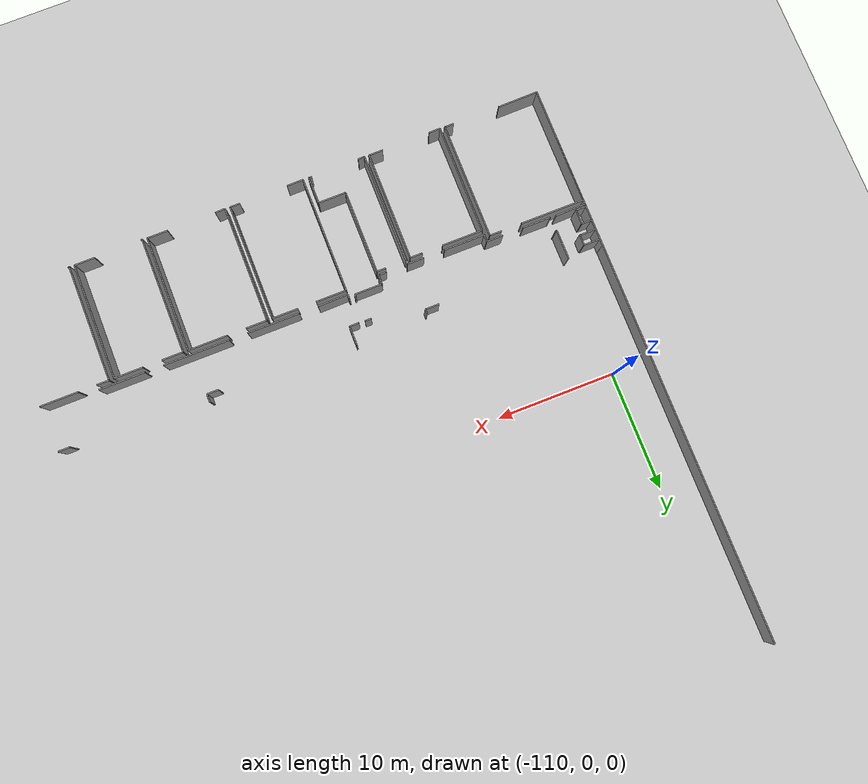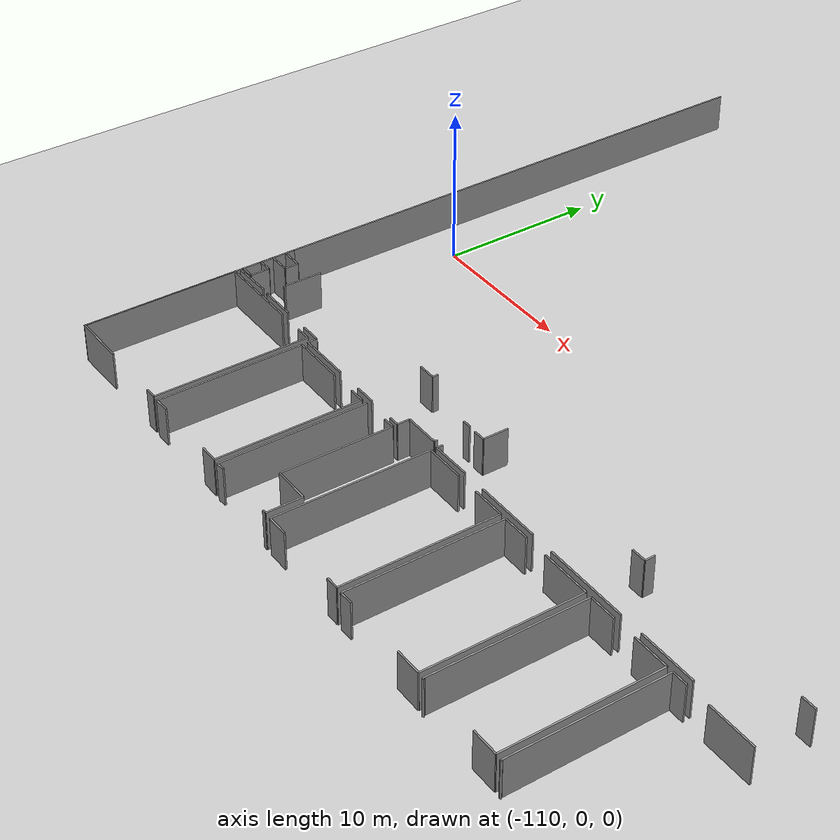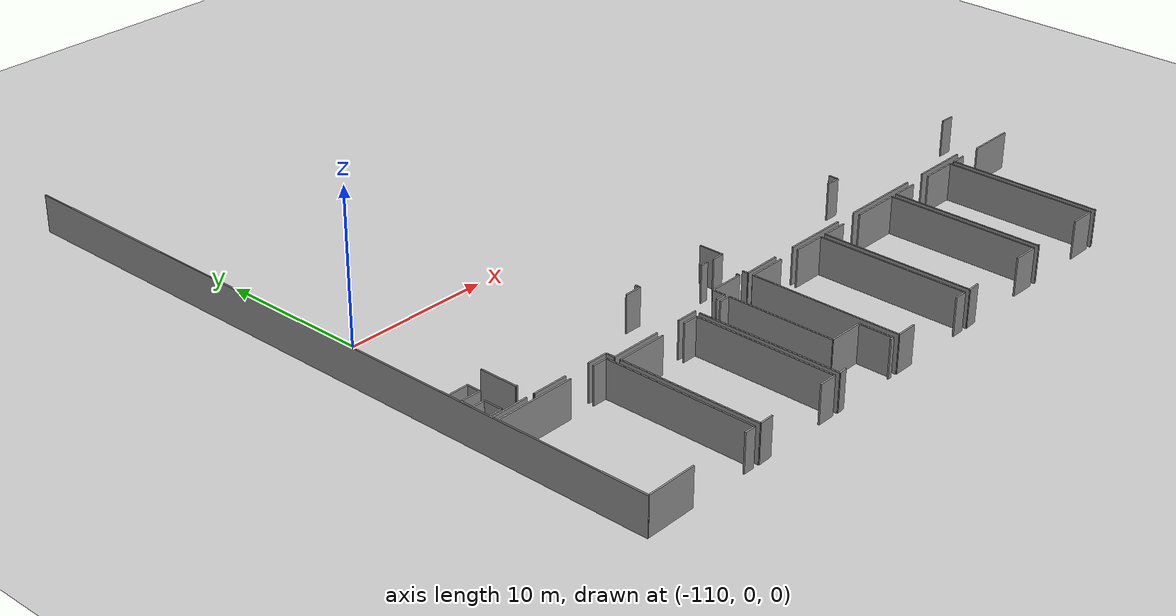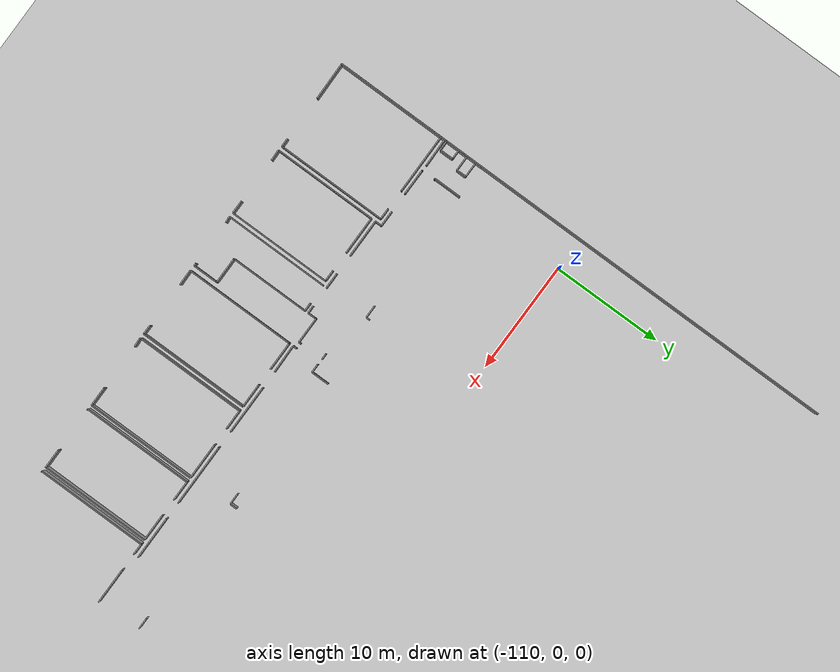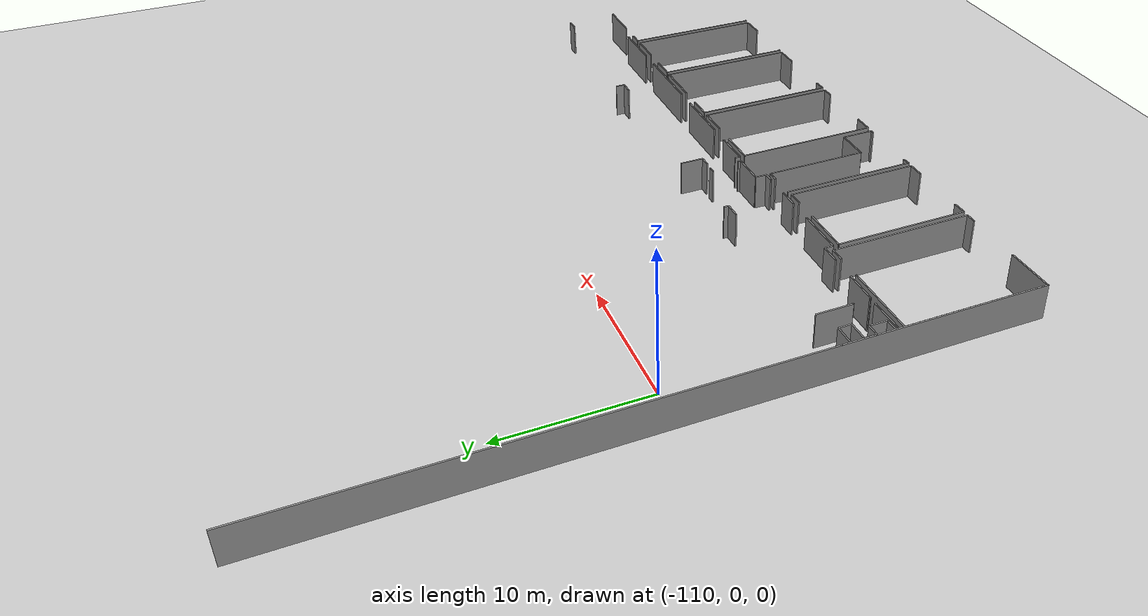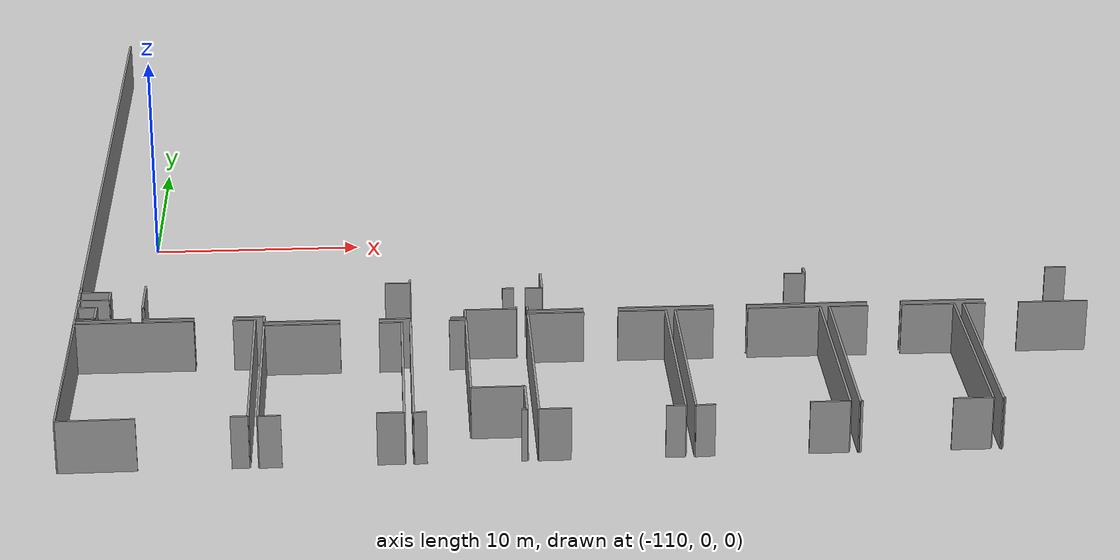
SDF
<sdf version="1.6">
 <world name="default">
  <model name="ground_plane">
   <static>1</static>
   <link name="link">
    <collision name="collision">
     <geometry><plane><normal>0 0 1</normal><size>100 100</size></plane></geometry>
     <surface><friction><ode><mu>100</mu><mu2>50</mu2></ode></friction></surface>
    </collision>
    <visual name="visual">
     <cast_shadows>0</cast_shadows>
     <geometry><plane><normal>0 0 1</normal><size>100 100</size></plane></geometry>
     <material>
      <script><uri>file://media/materials/scripts/gazebo.material</uri><name>Gazebo/Grey</name></script>
     </material>
    </visual>
   </link>
  </model>
  <model name="0510035341_A_40_1_103">
   <static>1</static>
   <link name="Wall_251">
    <collision name="Wall_251_Collision">
     <geometry><box><size>0.391594184496 0.1 2.5</size></box></geometry>
     <pose>0.195797092248 0 1.25 0 0 0</pose>
    </collision>
    <visual name="Wall_251_Visual">
     <pose>0.195797092248 0 1.25 0 0 0</pose>
     <geometry><box><size>0.391594184496 0.1 2.5</size></box></geometry>
     <material>
      <script><uri>file://media/materials/scripts/gazebo.material</uri><name>Gazebo/Grey</name></script>
      <ambient>1 1 1 1</ambient>
     </material>
    </visual>
    <pose>20.8461684972 -37.7350009523 0 0 0 1.57079632679</pose>
   </link>
   <link name="Wall_252">
    <collision name="Wall_252_Collision">
     <geometry><box><size>0.802996635134 0.1 2.5</size></box></geometry>
     <pose>0.401498317567 0 1.25 0 0 0</pose>
    </collision>
    <visual name="Wall_252_Visual">
     <pose>0.401498317567 0 1.25 0 0 0</pose>
     <geometry><box><size>0.802996635134 0.1 2.5</size></box></geometry>
     <material>
      <script><uri>file://media/materials/scripts/gazebo.material</uri><name>Gazebo/Grey</name></script>
      <ambient>1 1 1 1</ambient>
     </material>
    </visual>
    <pose>20.8461684972 -35.2236683385 0 0 0 0.0</pose>
   </link>
   <link name="Wall_253">
    <collision name="Wall_253_Collision">
     <geometry><box><size>1.62630944067 0.1 2.5</size></box></geometry>
     <pose>0.813154720335 0 1.25 0 0 0</pose>
    </collision>
    <visual name="Wall_253_Visual">
     <pose>0.813154720335 0 1.25 0 0 0</pose>
     <geometry><box><size>1.62630944067 0.1 2.5</size></box></geometry>
     <material>
      <script><uri>file://media/materials/scripts/gazebo.material</uri><name>Gazebo/Grey</name></script>
      <ambient>1 1 1 1</ambient>
     </material>
    </visual>
    <pose>21.6491651324 -35.2236683385 0 0 0 1.57079632679</pose>
   </link>
   <link name="Wall_257">
    <collision name="Wall_257_Collision">
     <geometry><box><size>0.988127737921 0.1 2.5</size></box></geometry>
     <pose>0.494063868961 0 1.25 0 0 0</pose>
    </collision>
    <visual name="Wall_257_Visual">
     <pose>0.494063868961 0 1.25 0 0 0</pose>
     <geometry><box><size>0.988127737921 0.1 2.5</size></box></geometry>
     <material>
      <script><uri>file://media/materials/scripts/gazebo.material</uri><name>Gazebo/Grey</name></script>
      <ambient>1 1 1 1</ambient>
     </material>
    </visual>
    <pose>33.238270586 -34.2281759888 0 0 0 0.0</pose>
   </link>
   <link name="Wall_258">
    <collision name="Wall_258_Collision">
     <geometry><box><size>0.658751825281 0.1 2.5</size></box></geometry>
     <pose>0.32937591264 0 1.25 0 0 0</pose>
    </collision>
    <visual name="Wall_258_Visual">
     <pose>0.32937591264 0 1.25 0 0 0</pose>
     <geometry><box><size>0.658751825281 0.1 2.5</size></box></geometry>
     <material>
      <script><uri>file://media/materials/scripts/gazebo.material</uri><name>Gazebo/Grey</name></script>
      <ambient>1 1 1 1</ambient>
     </material>
    </visual>
    <pose>34.2263983239 -34.2281759888 0 0 0 1.57079632679</pose>
   </link>
   <link name="Wall_261">
    <collision name="Wall_261_Collision">
     <geometry><box><size>1.00184115294 0.1 2.5</size></box></geometry>
     <pose>0.500920576471 0 1.25 0 0 0</pose>
    </collision>
    <visual name="Wall_261_Visual">
     <pose>0.500920576471 0 1.25 0 0 0</pose>
     <geometry><box><size>1.00184115294 0.1 2.5</size></box></geometry>
     <material>
      <script><uri>file://media/materials/scripts/gazebo.material</uri><name>Gazebo/Grey</name></script>
      <ambient>1 1 1 1</ambient>
     </material>
    </visual>
    <pose>45.7751253889 -34.197193829 0 0 0 0.0</pose>
   </link>
   <link name="Wall_281">
    <collision name="Wall_281_Collision">
     <geometry><box><size>3.90857723319 0.1 2.5</size></box></geometry>
     <pose>1.9542886166 0 1.25 0 0 0</pose>
    </collision>
    <visual name="Wall_281_Visual">
     <pose>1.9542886166 0 1.25 0 0 0</pose>
     <geometry><box><size>3.90857723319 0.1 2.5</size></box></geometry>
     <material>
      <script><uri>file://media/materials/scripts/gazebo.material</uri><name>Gazebo/Grey</name></script>
      <ambient>1 1 1 1</ambient>
     </material>
    </visual>
    <pose>42.1641800521 -37.6971620849 0 0 0 3.14159265359</pose>
   </link>
   <link name="Wall_282">
    <collision name="Wall_282_Collision">
     <geometry><box><size>5.64357818551 0.1 2.5</size></box></geometry>
     <pose>2.82178909276 0 1.25 0 0 0</pose>
    </collision>
    <visual name="Wall_282_Visual">
     <pose>2.82178909276 0 1.25 0 0 0</pose>
     <geometry><box><size>5.64357818551 0.1 2.5</size></box></geometry>
     <material>
      <script><uri>file://media/materials/scripts/gazebo.material</uri><name>Gazebo/Grey</name></script>
      <ambient>1 1 1 1</ambient>
     </material>
    </visual>
    <pose>36.6915116501 -37.6971620849 0 0 0 3.14159265359</pose>
   </link>
   <link name="Wall_283">
    <collision name="Wall_283_Collision">
     <geometry><box><size>4.43171862104 0.1 2.5</size></box></geometry>
     <pose>2.21585931052 0 1.25 0 0 0</pose>
    </collision>
    <visual name="Wall_283_Visual">
     <pose>2.21585931052 0 1.25 0 0 0</pose>
     <geometry><box><size>4.43171862104 0.1 2.5</size></box></geometry>
     <material>
      <script><uri>file://media/materials/scripts/gazebo.material</uri><name>Gazebo/Grey</name></script>
      <ambient>1 1 1 1</ambient>
     </material>
    </visual>
    <pose>29.4947622373 -37.6971620849 0 0 0 3.14159265359</pose>
   </link>
   <link name="Wall_284">
    <collision name="Wall_284_Collision">
     <geometry><box><size>2.58855668347 0.1 2.5</size></box></geometry>
     <pose>1.29427834174 0 1.25 0 0 0</pose>
    </collision>
    <visual name="Wall_284_Visual">
     <pose>1.29427834174 0 1.25 0 0 0</pose>
     <geometry><box><size>2.58855668347 0.1 2.5</size></box></geometry>
     <material>
      <script><uri>file://media/materials/scripts/gazebo.material</uri><name>Gazebo/Grey</name></script>
      <ambient>1 1 1 1</ambient>
     </material>
    </visual>
    <pose>23.4344486064 -37.6971620849 0 0 0 -3.12697438569</pose>
   </link>
   <link name="Wall_403">
    <collision name="Wall_403_Collision">
     <geometry><box><size>10.0361881785 0.1 2.5</size></box></geometry>
     <pose>5.01809408926 0 1.25 0 0 0</pose>
    </collision>
    <visual name="Wall_403_Visual">
     <pose>5.01809408926 0 1.25 0 0 0</pose>
     <geometry><box><size>10.0361881785 0.1 2.5</size></box></geometry>
     <material>
      <script><uri>file://media/materials/scripts/gazebo.material</uri><name>Gazebo/Grey</name></script>
      <ambient>1 1 1 1</ambient>
     </material>
    </visual>
    <pose>41.1486254841 -48.1637991239 0 0 0 1.57079632679</pose>
   </link>
   <link name="Wall_404">
    <collision name="Wall_404_Collision">
     <geometry><box><size>1.03155355216 0.1 2.5</size></box></geometry>
     <pose>0.515776776078 0 1.25 0 0 0</pose>
    </collision>
    <visual name="Wall_404_Visual">
     <pose>0.515776776078 0 1.25 0 0 0</pose>
     <geometry><box><size>1.03155355216 0.1 2.5</size></box></geometry>
     <material>
      <script><uri>file://media/materials/scripts/gazebo.material</uri><name>Gazebo/Grey</name></script>
      <ambient>1 1 1 1</ambient>
     </material>
    </visual>
    <pose>41.1486254841 -38.1276109453 0 0 0 0.0</pose>
   </link>
   <link name="Wall_405">
    <collision name="Wall_405_Collision">
     <geometry><box><size>3.24601612596 0.1 2.5</size></box></geometry>
     <pose>1.62300806298 0 1.25 0 0 0</pose>
    </collision>
    <visual name="Wall_405_Visual">
     <pose>1.62300806298 0 1.25 0 0 0</pose>
     <geometry><box><size>3.24601612596 0.1 2.5</size></box></geometry>
     <material>
      <script><uri>file://media/materials/scripts/gazebo.material</uri><name>Gazebo/Grey</name></script>
      <ambient>1 1 1 1</ambient>
     </material>
    </visual>
    <pose>43.7389372103 -38.1276109453 0 0 0 0.0</pose>
   </link>
   <link name="Wall_408">
    <collision name="Wall_408_Collision">
     <geometry><box><size>0.116349991307 0.1 2.5</size></box></geometry>
     <pose>0.0581749956536 0 1.25 0 0 0</pose>
    </collision>
    <visual name="Wall_408_Visual">
     <pose>0.0581749956536 0 1.25 0 0 0</pose>
     <geometry><box><size>0.116349991307 0.1 2.5</size></box></geometry>
     <material>
      <script><uri>file://media/materials/scripts/gazebo.material</uri><name>Gazebo/Grey</name></script>
      <ambient>1 1 1 1</ambient>
     </material>
    </visual>
    <pose>41.2243032188 -48.0754237826 0 0 0 -2.27894911411</pose>
   </link>
   <link name="Wall_409">
    <collision name="Wall_409_Collision">
     <geometry><box><size>10.0186654816 0.1 2.5</size></box></geometry>
     <pose>5.00933274078 0 1.25 0 0 0</pose>
    </collision>
    <visual name="Wall_409_Visual">
     <pose>5.00933274078 0 1.25 0 0 0</pose>
     <geometry><box><size>10.0186654816 0.1 2.5</size></box></geometry>
     <material>
      <script><uri>file://media/materials/scripts/gazebo.material</uri><name>Gazebo/Grey</name></script>
      <ambient>1 1 1 1</ambient>
     </material>
    </visual>
    <pose>34.8620405054 -48.1462764269 0 0 0 1.57079632679</pose>
   </link>
   <link name="Wall_410">
    <collision name="Wall_410_Collision">
     <geometry><box><size>1.81499587328 0.1 2.5</size></box></geometry>
     <pose>0.907497936639 0 1.25 0 0 0</pose>
    </collision>
    <visual name="Wall_410_Visual">
     <pose>0.907497936639 0 1.25 0 0 0</pose>
     <geometry><box><size>1.81499587328 0.1 2.5</size></box></geometry>
     <material>
      <script><uri>file://media/materials/scripts/gazebo.material</uri><name>Gazebo/Grey</name></script>
      <ambient>1 1 1 1</ambient>
     </material>
    </visual>
    <pose>34.8620405054 -38.1276109453 0 0 0 0.0</pose>
   </link>
   <link name="Wall_411">
    <collision name="Wall_411_Collision">
     <geometry><box><size>2.44835248556 0.1 2.5</size></box></geometry>
     <pose>1.22417624278 0 1.25 0 0 0</pose>
    </collision>
    <visual name="Wall_411_Visual">
     <pose>1.22417624278 0 1.25 0 0 0</pose>
     <geometry><box><size>2.44835248556 0.1 2.5</size></box></geometry>
     <material>
      <script><uri>file://media/materials/scripts/gazebo.material</uri><name>Gazebo/Grey</name></script>
      <ambient>1 1 1 1</ambient>
     </material>
    </visual>
    <pose>38.2665227605 -38.1276109453 0 0 0 0.0</pose>
   </link>
   <link name="Wall_412">
    <collision name="Wall_412_Collision">
     <geometry><box><size>9.96051044378 0.1 2.5</size></box></geometry>
     <pose>4.98025522189 0 1.25 0 0 0</pose>
    </collision>
    <visual name="Wall_412_Visual">
     <pose>4.98025522189 0 1.25 0 0 0</pose>
     <geometry><box><size>9.96051044378 0.1 2.5</size></box></geometry>
     <material>
      <script><uri>file://media/materials/scripts/gazebo.material</uri><name>Gazebo/Grey</name></script>
      <ambient>1 1 1 1</ambient>
     </material>
    </visual>
    <pose>40.714875246 -38.1276109453 0 0 0 -1.57079632679</pose>
   </link>
   <link name="Wall_413">
    <collision name="Wall_413_Collision">
     <geometry><box><size>1.75811059615 0.1 2.5</size></box></geometry>
     <pose>0.879055298076 0 1.25 0 0 0</pose>
    </collision>
    <visual name="Wall_413_Visual">
     <pose>0.879055298076 0 1.25 0 0 0</pose>
     <geometry><box><size>1.75811059615 0.1 2.5</size></box></geometry>
     <material>
      <script><uri>file://media/materials/scripts/gazebo.material</uri><name>Gazebo/Grey</name></script>
      <ambient>1 1 1 1</ambient>
     </material>
    </visual>
    <pose>40.714875246 -48.0881213891 0 0 0 3.14159265359</pose>
   </link>
   <link name="Wall_414">
    <collision name="Wall_414_Collision">
     <geometry><box><size>0.117270353256 0.1 2.5</size></box></geometry>
     <pose>0.058635176628 0 1.25 0 0 0</pose>
    </collision>
    <visual name="Wall_414_Visual">
     <pose>0.058635176628 0 1.25 0 0 0</pose>
     <geometry><box><size>0.117270353256 0.1 2.5</size></box></geometry>
     <material>
      <script><uri>file://media/materials/scripts/gazebo.material</uri><name>Gazebo/Grey</name></script>
      <ambient>1 1 1 1</ambient>
     </material>
    </visual>
    <pose>34.9638753095 -48.0881213891 0 0 0 -2.62271513993</pose>
   </link>
   <link name="Wall_415">
    <collision name="Wall_415_Collision">
     <geometry><box><size>10.0161259603 0.1 2.5</size></box></geometry>
     <pose>5.00806298013 0 1.25 0 0 0</pose>
    </collision>
    <visual name="Wall_415_Visual">
     <pose>5.00806298013 0 1.25 0 0 0</pose>
     <geometry><box><size>10.0161259603 0.1 2.5</size></box></geometry>
     <material>
      <script><uri>file://media/materials/scripts/gazebo.material</uri><name>Gazebo/Grey</name></script>
      <ambient>1 1 1 1</ambient>
     </material>
    </visual>
    <pose>27.6749412736 -48.1229128309 0 0 0 1.57079632679</pose>
   </link>
   <link name="Wall_416">
    <collision name="Wall_416_Collision">
     <geometry><box><size>1.80153641039 0.1 2.5</size></box></geometry>
     <pose>0.900768205193 0 1.25 0 0 0</pose>
    </collision>
    <visual name="Wall_416_Visual">
     <pose>0.900768205193 0 1.25 0 0 0</pose>
     <geometry><box><size>1.80153641039 0.1 2.5</size></box></geometry>
     <material>
      <script><uri>file://media/materials/scripts/gazebo.material</uri><name>Gazebo/Grey</name></script>
      <ambient>1 1 1 1</ambient>
     </material>
    </visual>
    <pose>27.6749412736 -38.1067868707 0 0 0 0.0</pose>
   </link>
   <link name="Wall_417">
    <collision name="Wall_417_Collision">
     <geometry><box><size>3.36842105263 0.1 2.5</size></box></geometry>
     <pose>1.68421052632 0 1.25 0 0 0</pose>
    </collision>
    <visual name="Wall_417_Visual">
     <pose>1.68421052632 0 1.25 0 0 0</pose>
     <geometry><box><size>3.36842105263 0.1 2.5</size></box></geometry>
     <material>
      <script><uri>file://media/materials/scripts/gazebo.material</uri><name>Gazebo/Grey</name></script>
      <ambient>1 1 1 1</ambient>
     </material>
    </visual>
    <pose>31.0725668212 -38.1067868707 0 0 0 0.0</pose>
   </link>
   <link name="Wall_418">
    <collision name="Wall_418_Collision">
     <geometry><box><size>9.97117643324 0.1 2.5</size></box></geometry>
     <pose>4.98558821662 0 1.25 0 0 0</pose>
    </collision>
    <visual name="Wall_418_Visual">
     <pose>4.98558821662 0 1.25 0 0 0</pose>
     <geometry><box><size>9.97117643324 0.1 2.5</size></box></geometry>
     <material>
      <script><uri>file://media/materials/scripts/gazebo.material</uri><name>Gazebo/Grey</name></script>
      <ambient>1 1 1 1</ambient>
     </material>
    </visual>
    <pose>34.4409878738 -38.1067868707 0 0 0 -1.57079632679</pose>
   </link>
   <link name="Wall_419">
    <collision name="Wall_419_Collision">
     <geometry><box><size>1.76242778236 0.1 2.5</size></box></geometry>
     <pose>0.881213891182 0 1.25 0 0 0</pose>
    </collision>
    <visual name="Wall_419_Visual">
     <pose>0.881213891182 0 1.25 0 0 0</pose>
     <geometry><box><size>1.76242778236 0.1 2.5</size></box></geometry>
     <material>
      <script><uri>file://media/materials/scripts/gazebo.material</uri><name>Gazebo/Grey</name></script>
      <ambient>1 1 1 1</ambient>
     </material>
    </visual>
    <pose>34.4409878738 -48.0779633039 0 0 0 3.14159265359</pose>
   </link>
   <link name="Wall_420">
    <collision name="Wall_420_Collision">
     <geometry><box><size>0.868410613374 0.1 2.5</size></box></geometry>
     <pose>0.434205306687 0 1.25 0 0 0</pose>
    </collision>
    <visual name="Wall_420_Visual">
     <pose>0.434205306687 0 1.25 0 0 0</pose>
     <geometry><box><size>0.868410613374 0.1 2.5</size></box></geometry>
     <material>
      <script><uri>file://media/materials/scripts/gazebo.material</uri><name>Gazebo/Grey</name></script>
      <ambient>1 1 1 1</ambient>
     </material>
    </visual>
    <pose>28.5421877976 -48.0779633039 0 0 0 -3.08980882946</pose>
   </link>
   <link name="Wall_421">
    <collision name="Wall_421_Collision">
     <geometry><box><size>10.0021585931 0.1 2.5</size></box></geometry>
     <pose>5.00107929655 0 1.25 0 0 0</pose>
    </collision>
    <visual name="Wall_421_Visual">
     <pose>5.00107929655 0 1.25 0 0 0</pose>
     <geometry><box><size>10.0021585931 0.1 2.5</size></box></geometry>
     <material>
      <script><uri>file://media/materials/scripts/gazebo.material</uri><name>Gazebo/Grey</name></script>
      <ambient>1 1 1 1</ambient>
     </material>
    </visual>
    <pose>20.8461684972 -48.1008189956 0 0 0 1.57079632679</pose>
   </link>
   <link name="Wall_422">
    <collision name="Wall_422_Collision">
     <geometry><box><size>2.603517237 0.1 2.5</size></box></geometry>
     <pose>1.3017586185 0 1.25 0 0 0</pose>
    </collision>
    <visual name="Wall_422_Visual">
     <pose>1.3017586185 0 1.25 0 0 0</pose>
     <geometry><box><size>2.603517237 0.1 2.5</size></box></geometry>
     <material>
      <script><uri>file://media/materials/scripts/gazebo.material</uri><name>Gazebo/Grey</name></script>
      <ambient>1 1 1 1</ambient>
     </material>
    </visual>
    <pose>20.8461684972 -38.0986604025 0 0 0 0.0</pose>
   </link>
   <link name="Wall_423">
    <collision name="Wall_423_Collision">
     <geometry><box><size>2.22081137706 0.1 2.5</size></box></geometry>
     <pose>1.11040568853 0 1.25 0 0 0</pose>
    </collision>
    <visual name="Wall_423_Visual">
     <pose>1.11040568853 0 1.25 0 0 0</pose>
     <geometry><box><size>2.22081137706 0.1 2.5</size></box></geometry>
     <material>
      <script><uri>file://media/materials/scripts/gazebo.material</uri><name>Gazebo/Grey</name></script>
      <ambient>1 1 1 1</ambient>
     </material>
    </visual>
    <pose>25.0198717542 -38.0986604025 0 0 0 0.0</pose>
   </link>
   <link name="Wall_424">
    <collision name="Wall_424_Collision">
     <geometry><box><size>9.9894609866 0.1 2.5</size></box></geometry>
     <pose>4.9947304933 0 1.25 0 0 0</pose>
    </collision>
    <visual name="Wall_424_Visual">
     <pose>4.9947304933 0 1.25 0 0 0</pose>
     <geometry><box><size>9.9894609866 0.1 2.5</size></box></geometry>
     <material>
      <script><uri>file://media/materials/scripts/gazebo.material</uri><name>Gazebo/Grey</name></script>
      <ambient>1 1 1 1</ambient>
     </material>
    </visual>
    <pose>27.2406831312 -38.0986604025 0 0 0 -1.57079632679</pose>
   </link>
   <link name="Wall_425">
    <collision name="Wall_425_Collision">
     <geometry><box><size>0.858104247349 0.1 2.5</size></box></geometry>
     <pose>0.429052123675 0 1.25 0 0 0</pose>
    </collision>
    <visual name="Wall_425_Visual">
     <pose>0.429052123675 0 1.25 0 0 0</pose>
     <geometry><box><size>0.858104247349 0.1 2.5</size></box></geometry>
     <material>
      <script><uri>file://media/materials/scripts/gazebo.material</uri><name>Gazebo/Grey</name></script>
      <ambient>1 1 1 1</ambient>
     </material>
    </visual>
    <pose>27.2406831312 -48.0881213891 0 0 0 3.14159265359</pose>
   </link>
   <link name="Wall_426">
    <collision name="Wall_426_Collision">
     <geometry><box><size>1.41279276093 0.1 2.5</size></box></geometry>
     <pose>0.706396380467 0 1.25 0 0 0</pose>
    </collision>
    <visual name="Wall_426_Visual">
     <pose>0.706396380467 0 1.25 0 0 0</pose>
     <geometry><box><size>1.41279276093 0.1 2.5</size></box></geometry>
     <material>
      <script><uri>file://media/materials/scripts/gazebo.material</uri><name>Gazebo/Grey</name></script>
      <ambient>1 1 1 1</ambient>
     </material>
    </visual>
    <pose>22.2589041966 -48.0881213891 0 0 0 -3.13260493947</pose>
   </link>
   <link name="Wall_427">
    <collision name="Wall_427_Collision">
     <geometry><box><size>9.47774744461 0.1 2.5</size></box></geometry>
     <pose>4.7388737223 0 1.25 0 0 0</pose>
    </collision>
    <visual name="Wall_427_Visual">
     <pose>4.7388737223 0 1.25 0 0 0</pose>
     <geometry><box><size>9.47774744461 0.1 2.5</size></box></geometry>
     <material>
      <script><uri>file://media/materials/scripts/gazebo.material</uri><name>Gazebo/Grey</name></script>
      <ambient>1 1 1 1</ambient>
     </material>
    </visual>
    <pose>15.4202272872 -48.1305313948 0 0 0 1.57079632679</pose>
   </link>
   <link name="Wall_428">
    <collision name="Wall_428_Collision">
     <geometry><box><size>0.772014475271 0.1 2.5</size></box></geometry>
     <pose>0.386007237636 0 1.25 0 0 0</pose>
    </collision>
    <visual name="Wall_428_Visual">
     <pose>0.386007237636 0 1.25 0 0 0</pose>
     <geometry><box><size>0.772014475271 0.1 2.5</size></box></geometry>
     <material>
      <script><uri>file://media/materials/scripts/gazebo.material</uri><name>Gazebo/Grey</name></script>
      <ambient>1 1 1 1</ambient>
     </material>
    </visual>
    <pose>17.1986540537 -38.6527839502 0 0 0 0.0</pose>
   </link>
   <link name="Wall_429">
    <collision name="Wall_429_Collision">
     <geometry><box><size>7.14113389626 0.1 2.5</size></box></geometry>
     <pose>3.57056694813 0 1.25 0 0 0</pose>
    </collision>
    <visual name="Wall_429_Visual">
     <pose>3.57056694813 0 1.25 0 0 0</pose>
     <geometry><box><size>7.14113389626 0.1 2.5</size></box></geometry>
     <material>
      <script><uri>file://media/materials/scripts/gazebo.material</uri><name>Gazebo/Grey</name></script>
      <ambient>1 1 1 1</ambient>
     </material>
    </visual>
    <pose>17.970668529 -38.6527839502 0 0 0 -1.57079632679</pose>
   </link>
   <link name="Wall_430">
    <collision name="Wall_430_Collision">
     <geometry><box><size>2.37038918164 0.1 2.5</size></box></geometry>
     <pose>1.18519459082 0 1.25 0 0 0</pose>
    </collision>
    <visual name="Wall_430_Visual">
     <pose>1.18519459082 0 1.25 0 0 0</pose>
     <geometry><box><size>2.37038918164 0.1 2.5</size></box></geometry>
     <material>
      <script><uri>file://media/materials/scripts/gazebo.material</uri><name>Gazebo/Grey</name></script>
      <ambient>1 1 1 1</ambient>
     </material>
    </visual>
    <pose>17.970668529 -45.7939178465 0 0 0 0.0</pose>
   </link>
   <link name="Wall_431">
    <collision name="Wall_431_Collision">
     <geometry><box><size>2.28150593613 0.1 2.5</size></box></geometry>
     <pose>1.14075296807 0 1.25 0 0 0</pose>
    </collision>
    <visual name="Wall_431_Visual">
     <pose>1.14075296807 0 1.25 0 0 0</pose>
     <geometry><box><size>2.28150593613 0.1 2.5</size></box></geometry>
     <material>
      <script><uri>file://media/materials/scripts/gazebo.material</uri><name>Gazebo/Grey</name></script>
      <ambient>1 1 1 1</ambient>
     </material>
    </visual>
    <pose>20.3410577106 -45.7939178465 0 0 0 -1.57079632679</pose>
   </link>
   <link name="Wall_432">
    <collision name="Wall_432_Collision">
     <geometry><box><size>0.252428417243 0.1 2.5</size></box></geometry>
     <pose>0.126214208622 0 1.25 0 0 0</pose>
    </collision>
    <visual name="Wall_432_Visual">
     <pose>0.126214208622 0 1.25 0 0 0</pose>
     <geometry><box><size>0.252428417243 0.1 2.5</size></box></geometry>
     <material>
      <script><uri>file://media/materials/scripts/gazebo.material</uri><name>Gazebo/Grey</name></script>
      <ambient>1 1 1 1</ambient>
     </material>
    </visual>
    <pose>20.3410577106 -48.0754237826 0 0 0 3.14159265359</pose>
   </link>
   <link name="Wall_433">
    <collision name="Wall_433_Collision">
     <geometry><box><size>0.567471647066 0.1 2.5</size></box></geometry>
     <pose>0.283735823533 0 1.25 0 0 0</pose>
    </collision>
    <visual name="Wall_433_Visual">
     <pose>0.283735823533 0 1.25 0 0 0</pose>
     <geometry><box><size>0.567471647066 0.1 2.5</size></box></geometry>
     <material>
      <script><uri>file://media/materials/scripts/gazebo.material</uri><name>Gazebo/Grey</name></script>
      <ambient>1 1 1 1</ambient>
     </material>
    </visual>
    <pose>15.9850168243 -48.0754237826 0 0 0 -3.04432859191</pose>
   </link>
   <link name="Wall_434">
    <collision name="Wall_434_Collision">
     <geometry><box><size>9.37032569361 0.1 2.5</size></box></geometry>
     <pose>4.6851628468 0 1.25 0 0 0</pose>
    </collision>
    <visual name="Wall_434_Visual">
     <pose>4.6851628468 0 1.25 0 0 0</pose>
     <geometry><box><size>9.37032569361 0.1 2.5</size></box></geometry>
     <material>
      <script><uri>file://media/materials/scripts/gazebo.material</uri><name>Gazebo/Grey</name></script>
      <ambient>1 1 1 1</ambient>
     </material>
    </visual>
    <pose>8.70141578312 -48.1109770808 0 0 0 1.57079632679</pose>
   </link>
   <link name="Wall_435">
    <collision name="Wall_435_Collision">
     <geometry><box><size>3.47889022919 0.1 2.5</size></box></geometry>
     <pose>1.7394451146 0 1.25 0 0 0</pose>
    </collision>
    <visual name="Wall_435_Visual">
     <pose>1.7394451146 0 1.25 0 0 0</pose>
     <geometry><box><size>3.47889022919 0.1 2.5</size></box></geometry>
     <material>
      <script><uri>file://media/materials/scripts/gazebo.material</uri><name>Gazebo/Grey</name></script>
      <ambient>1 1 1 1</ambient>
     </material>
    </visual>
    <pose>8.70141578312 -38.7406513872 0 0 0 0.0</pose>
   </link>
   <link name="Wall_436">
    <collision name="Wall_436_Collision">
     <geometry><box><size>1.0539013396 0.1 2.5</size></box></geometry>
     <pose>0.526950669799 0 1.25 0 0 0</pose>
    </collision>
    <visual name="Wall_436_Visual">
     <pose>0.526950669799 0 1.25 0 0 0</pose>
     <geometry><box><size>1.0539013396 0.1 2.5</size></box></geometry>
     <material>
      <script><uri>file://media/materials/scripts/gazebo.material</uri><name>Gazebo/Grey</name></script>
      <ambient>1 1 1 1</ambient>
     </material>
    </visual>
    <pose>13.9671131992 -38.7406513872 0 0 0 0.0</pose>
   </link>
   <link name="Wall_437">
    <collision name="Wall_437_Collision">
     <geometry><box><size>9.34162910291 0.1 2.5</size></box></geometry>
     <pose>4.67081455146 0 1.25 0 0 0</pose>
    </collision>
    <visual name="Wall_437_Visual">
     <pose>4.67081455146 0 1.25 0 0 0</pose>
     <geometry><box><size>9.34162910291 0.1 2.5</size></box></geometry>
     <material>
      <script><uri>file://media/materials/scripts/gazebo.material</uri><name>Gazebo/Grey</name></script>
      <ambient>1 1 1 1</ambient>
     </material>
    </visual>
    <pose>15.0210145388 -38.7406513872 0 0 0 -1.57079632679</pose>
   </link>
   <link name="Wall_438">
    <collision name="Wall_438_Collision">
     <geometry><box><size>1.20246333566 0.1 2.5</size></box></geometry>
     <pose>0.601231667831 0 1.25 0 0 0</pose>
    </collision>
    <visual name="Wall_438_Visual">
     <pose>0.601231667831 0 1.25 0 0 0</pose>
     <geometry><box><size>1.20246333566 0.1 2.5</size></box></geometry>
     <material>
      <script><uri>file://media/materials/scripts/gazebo.material</uri><name>Gazebo/Grey</name></script>
      <ambient>1 1 1 1</ambient>
     </material>
    </visual>
    <pose>15.0210145388 -48.0822804901 0 0 0 3.14159265359</pose>
   </link>
   <link name="Wall_439">
    <collision name="Wall_439_Collision">
     <geometry><box><size>0.993367411248 0.1 2.5</size></box></geometry>
     <pose>0.496683705624 0 1.25 0 0 0</pose>
    </collision>
    <visual name="Wall_439_Visual">
     <pose>0.496683705624 0 1.25 0 0 0</pose>
     <geometry><box><size>0.993367411248 0.1 2.5</size></box></geometry>
     <material>
      <script><uri>file://media/materials/scripts/gazebo.material</uri><name>Gazebo/Grey</name></script>
      <ambient>1 1 1 1</ambient>
     </material>
    </visual>
    <pose>9.69436861152 -48.0822804901 0 0 0 -3.11270043988</pose>
   </link>
   <link name="Wall_440">
    <collision name="Wall_440_Collision">
     <geometry><box><size>10.0161259603 0.1 2.5</size></box></geometry>
     <pose>5.00806298013 0 1.25 0 0 0</pose>
    </collision>
    <visual name="Wall_440_Visual">
     <pose>5.00806298013 0 1.25 0 0 0</pose>
     <geometry><box><size>10.0161259603 0.1 2.5</size></box></geometry>
     <material>
      <script><uri>file://media/materials/scripts/gazebo.material</uri><name>Gazebo/Grey</name></script>
      <ambient>1 1 1 1</ambient>
     </material>
    </visual>
    <pose>0.00660275538061 -48.1229128309 0 0 0 1.57079632679</pose>
   </link>
   <link name="Wall_441">
    <collision name="Wall_441_Collision">
     <geometry><box><size>5.46124055616 0.1 2.5</size></box></geometry>
     <pose>2.73062027808 0 1.25 0 0 0</pose>
    </collision>
    <visual name="Wall_441_Visual">
     <pose>2.73062027808 0 1.25 0 0 0</pose>
     <geometry><box><size>5.46124055616 0.1 2.5</size></box></geometry>
     <material>
      <script><uri>file://media/materials/scripts/gazebo.material</uri><name>Gazebo/Grey</name></script>
      <ambient>1 1 1 1</ambient>
     </material>
    </visual>
    <pose>0.00660275538061 -38.1067868707 0 0 0 0.0</pose>
   </link>
   <link name="Wall_442">
    <collision name="Wall_442_Collision">
     <geometry><box><size>1.02114151482 0.1 2.5</size></box></geometry>
     <pose>0.510570757412 0 1.25 0 0 0</pose>
    </collision>
    <visual name="Wall_442_Visual">
     <pose>0.510570757412 0 1.25 0 0 0</pose>
     <geometry><box><size>1.02114151482 0.1 2.5</size></box></geometry>
     <material>
      <script><uri>file://media/materials/scripts/gazebo.material</uri><name>Gazebo/Grey</name></script>
      <ambient>1 1 1 1</ambient>
     </material>
    </visual>
    <pose>7.26176115802 -38.1067868707 0 0 0 0.0</pose>
   </link>
   <link name="Wall_443">
    <collision name="Wall_443_Collision">
     <geometry><box><size>9.96863691194 0.1 2.5</size></box></geometry>
     <pose>4.98431845597 0 1.25 0 0 0</pose>
    </collision>
    <visual name="Wall_443_Visual">
     <pose>4.98431845597 0 1.25 0 0 0</pose>
     <geometry><box><size>9.96863691194 0.1 2.5</size></box></geometry>
     <material>
      <script><uri>file://media/materials/scripts/gazebo.material</uri><name>Gazebo/Grey</name></script>
      <ambient>1 1 1 1</ambient>
     </material>
    </visual>
    <pose>8.28290267285 -38.1067868707 0 0 0 -1.57079632679</pose>
   </link>
   <link name="Wall_444">
    <collision name="Wall_444_Collision">
     <geometry><box><size>0.769728906101 0.1 2.5</size></box></geometry>
     <pose>0.384864453051 0 1.25 0 0 0</pose>
    </collision>
    <visual name="Wall_444_Visual">
     <pose>0.384864453051 0 1.25 0 0 0</pose>
     <geometry><box><size>0.769728906101 0.1 2.5</size></box></geometry>
     <material>
      <script><uri>file://media/materials/scripts/gazebo.material</uri><name>Gazebo/Grey</name></script>
      <ambient>1 1 1 1</ambient>
     </material>
    </visual>
    <pose>8.28290267285 -48.0754237826 0 0 0 3.14159265359</pose>
   </link>
   <link name="Wall_445">
    <collision name="Wall_445_Collision">
     <geometry><box><size>3.44137903817 0.1 2.5</size></box></geometry>
     <pose>1.72068951909 0 1.25 0 0 0</pose>
    </collision>
    <visual name="Wall_445_Visual">
     <pose>1.72068951909 0 1.25 0 0 0</pose>
     <geometry><box><size>3.44137903817 0.1 2.5</size></box></geometry>
     <material>
      <script><uri>file://media/materials/scripts/gazebo.material</uri><name>Gazebo/Grey</name></script>
      <ambient>1 1 1 1</ambient>
     </material>
    </visual>
    <pose>3.4476541172 -48.0754237826 0 0 0 -3.12779279165</pose>
   </link>
   <link name="Wall_446">
    <collision name="Wall_446_Collision">
     <geometry><box><size>0.210018411529 0.1 2.5</size></box></geometry>
     <pose>0.105009205765 0 1.25 0 0 0</pose>
    </collision>
    <visual name="Wall_446_Visual">
     <pose>0.105009205765 0 1.25 0 0 0</pose>
     <geometry><box><size>0.210018411529 0.1 2.5</size></box></geometry>
     <material>
      <script><uri>file://media/materials/scripts/gazebo.material</uri><name>Gazebo/Grey</name></script>
      <ambient>1 1 1 1</ambient>
     </material>
    </visual>
    <pose>0.00406323408038 -37.7334772395 0 0 0 1.57079632679</pose>
   </link>
   <link name="Wall_447">
    <collision name="Wall_447_Collision">
     <geometry><box><size>0.887816646562 0.1 2.5</size></box></geometry>
     <pose>0.443908323281 0 1.25 0 0 0</pose>
    </collision>
    <visual name="Wall_447_Visual">
     <pose>0.443908323281 0 1.25 0 0 0</pose>
     <geometry><box><size>0.887816646562 0.1 2.5</size></box></geometry>
     <material>
      <script><uri>file://media/materials/scripts/gazebo.material</uri><name>Gazebo/Grey</name></script>
      <ambient>1 1 1 1</ambient>
     </material>
    </visual>
    <pose>0.00406323408038 -37.523458828 0 0 0 0.0</pose>
   </link>
   <link name="Wall_448">
    <collision name="Wall_448_Collision">
     <geometry><box><size>1.23166783061 0.1 2.5</size></box></geometry>
     <pose>0.615833915307 0 1.25 0 0 0</pose>
    </collision>
    <visual name="Wall_448_Visual">
     <pose>0.615833915307 0 1.25 0 0 0</pose>
     <geometry><box><size>1.23166783061 0.1 2.5</size></box></geometry>
     <material>
      <script><uri>file://media/materials/scripts/gazebo.material</uri><name>Gazebo/Grey</name></script>
      <ambient>1 1 1 1</ambient>
     </material>
    </visual>
    <pose>0.891879880642 -37.523458828 0 0 0 1.57079632679</pose>
   </link>
   <link name="Wall_449">
    <collision name="Wall_449_Collision">
     <geometry><box><size>0.859120055869 0.1 2.5</size></box></geometry>
     <pose>0.429560027935 0 1.25 0 0 0</pose>
    </collision>
    <visual name="Wall_449_Visual">
     <pose>0.429560027935 0 1.25 0 0 0</pose>
     <geometry><box><size>0.859120055869 0.1 2.5</size></box></geometry>
     <material>
      <script><uri>file://media/materials/scripts/gazebo.material</uri><name>Gazebo/Grey</name></script>
      <ambient>1 1 1 1</ambient>
     </material>
    </visual>
    <pose>0.891879880642 -36.2917909974 0 0 0 3.14159265359</pose>
   </link>
   <link name="Wall_450">
    <collision name="Wall_450_Collision">
     <geometry><box><size>0.830677417307 0.1 2.5</size></box></geometry>
     <pose>0.415338708653 0 1.25 0 0 0</pose>
    </collision>
    <visual name="Wall_450_Visual">
     <pose>0.415338708653 0 1.25 0 0 0</pose>
     <geometry><box><size>0.830677417307 0.1 2.5</size></box></geometry>
     <material>
      <script><uri>file://media/materials/scripts/gazebo.material</uri><name>Gazebo/Grey</name></script>
      <ambient>1 1 1 1</ambient>
     </material>
    </visual>
    <pose>0.032759824773 -36.2917909974 0 0 0 1.57079632679</pose>
   </link>
   <link name="Wall_451">
    <collision name="Wall_451_Collision">
     <geometry><box><size>1.38429306076 0.1 2.5</size></box></geometry>
     <pose>0.692146530379 0 1.25 0 0 0</pose>
    </collision>
    <visual name="Wall_451_Visual">
     <pose>0.692146530379 0 1.25 0 0 0</pose>
     <geometry><box><size>1.38429306076 0.1 2.5</size></box></geometry>
     <material>
      <script><uri>file://media/materials/scripts/gazebo.material</uri><name>Gazebo/Grey</name></script>
      <ambient>1 1 1 1</ambient>
     </material>
    </visual>
    <pose>0.032759824773 -35.4611135801 0 0 0 0.0</pose>
   </link>
   <link name="Wall_452">
    <collision name="Wall_452_Collision">
     <geometry><box><size>0.887816646562 0.1 2.5</size></box></geometry>
     <pose>0.443908323281 0 1.25 0 0 0</pose>
    </collision>
    <visual name="Wall_452_Visual">
     <pose>0.443908323281 0 1.25 0 0 0</pose>
     <geometry><box><size>0.887816646562 0.1 2.5</size></box></geometry>
     <material>
      <script><uri>file://media/materials/scripts/gazebo.material</uri><name>Gazebo/Grey</name></script>
      <ambient>1 1 1 1</ambient>
     </material>
    </visual>
    <pose>1.41705288553 -35.4611135801 0 0 0 1.57079632679</pose>
   </link>
   <link name="Wall_453">
    <collision name="Wall_453_Collision">
     <geometry><box><size>1.40333947051 0.1 2.5</size></box></geometry>
     <pose>0.701669735255 0 1.25 0 0 0</pose>
    </collision>
    <visual name="Wall_453_Visual">
     <pose>0.701669735255 0 1.25 0 0 0</pose>
     <geometry><box><size>1.40333947051 0.1 2.5</size></box></geometry>
     <material>
      <script><uri>file://media/materials/scripts/gazebo.material</uri><name>Gazebo/Grey</name></script>
      <ambient>1 1 1 1</ambient>
     </material>
    </visual>
    <pose>1.41705288553 -34.5732969335 0 0 0 3.14159265359</pose>
   </link>
   <link name="Wall_454">
    <collision name="Wall_454_Collision">
     <geometry><box><size>0.591962415085 0.1 2.5</size></box></geometry>
     <pose>0.295981207542 0 1.25 0 0 0</pose>
    </collision>
    <visual name="Wall_454_Visual">
     <pose>0.295981207542 0 1.25 0 0 0</pose>
     <geometry><box><size>0.591962415085 0.1 2.5</size></box></geometry>
     <material>
      <script><uri>file://media/materials/scripts/gazebo.material</uri><name>Gazebo/Grey</name></script>
      <ambient>1 1 1 1</ambient>
     </material>
    </visual>
    <pose>0.0137134150213 -34.5732969335 0 0 0 1.57079632679</pose>
   </link>
   <link name="Wall_457">
    <collision name="Wall_457_Collision">
     <geometry><box><size>2.57805623375 0.1 2.5</size></box></geometry>
     <pose>1.28902811687 0 1.25 0 0 0</pose>
    </collision>
    <visual name="Wall_457_Visual">
     <pose>1.28902811687 0 1.25 0 0 0</pose>
     <geometry><box><size>2.57805623375 0.1 2.5</size></box></geometry>
     <material>
      <script><uri>file://media/materials/scripts/gazebo.material</uri><name>Gazebo/Grey</name></script>
      <ambient>1 1 1 1</ambient>
     </material>
    </visual>
    <pose>2.58167735382 -37.6857342391 0 0 0 -3.1230726038</pose>
   </link>
   <link name="Wall_458">
    <collision name="Wall_458_Collision">
     <geometry><box><size>0.0579010856454 0.1 2.5</size></box></geometry>
     <pose>0.0289505428227 0 1.25 0 0 0</pose>
    </collision>
    <visual name="Wall_458_Visual">
     <pose>0.0289505428227 0 1.25 0 0 0</pose>
     <geometry><box><size>0.0579010856454 0.1 2.5</size></box></geometry>
     <material>
      <script><uri>file://media/materials/scripts/gazebo.material</uri><name>Gazebo/Grey</name></script>
      <ambient>1 1 1 1</ambient>
     </material>
    </visual>
    <pose>3.11878610882 -37.7243349629 0 0 0 1.57079632679</pose>
   </link>
   <link name="Wall_459">
    <collision name="Wall_459_Collision">
     <geometry><box><size>0.0929464795886 0.1 2.5</size></box></geometry>
     <pose>0.0464732397943 0 1.25 0 0 0</pose>
    </collision>
    <visual name="Wall_459_Visual">
     <pose>0.0464732397943 0 1.25 0 0 0</pose>
     <geometry><box><size>0.0929464795886 0.1 2.5</size></box></geometry>
     <material>
      <script><uri>file://media/materials/scripts/gazebo.material</uri><name>Gazebo/Grey</name></script>
      <ambient>1 1 1 1</ambient>
     </material>
    </visual>
    <pose>3.11878610882 -36.5081582122 0 0 0 3.14159265359</pose>
   </link>
   <link name="Wall_460">
    <collision name="Wall_460_Collision">
     <geometry><box><size>2.52961716716 0.1 2.5</size></box></geometry>
     <pose>1.26480858358 0 1.25 0 0 0</pose>
    </collision>
    <visual name="Wall_460_Visual">
     <pose>1.26480858358 0 1.25 0 0 0</pose>
     <geometry><box><size>2.52961716716 0.1 2.5</size></box></geometry>
     <material>
      <script><uri>file://media/materials/scripts/gazebo.material</uri><name>Gazebo/Grey</name></script>
      <ambient>1 1 1 1</ambient>
     </material>
    </visual>
    <pose>3.02583962923 -36.5081582122 0 0 0 1.57079632679</pose>
   </link>
   <link name="Wall_465">
    <collision name="Wall_465_Collision">
     <geometry><box><size>1.18392483017 0.1 2.5</size></box></geometry>
     <pose>0.591962415085 0 1.25 0 0 0</pose>
    </collision>
    <visual name="Wall_465_Visual">
     <pose>0.591962415085 0 1.25 0 0 0</pose>
     <geometry><box><size>1.18392483017 0.1 2.5</size></box></geometry>
     <material>
      <script><uri>file://media/materials/scripts/gazebo.material</uri><name>Gazebo/Grey</name></script>
      <ambient>1 1 1 1</ambient>
     </material>
    </visual>
    <pose>14.2672846168 -34.3061392927 0 0 0 0.0</pose>
   </link>
   <link name="Wall_466">
    <collision name="Wall_466_Collision">
     <geometry><box><size>0.353247412863 0.1 2.5</size></box></geometry>
     <pose>0.176623706431 0 1.25 0 0 0</pose>
    </collision>
    <visual name="Wall_466_Visual">
     <pose>0.176623706431 0 1.25 0 0 0</pose>
     <geometry><box><size>0.353247412863 0.1 2.5</size></box></geometry>
     <material>
      <script><uri>file://media/materials/scripts/gazebo.material</uri><name>Gazebo/Grey</name></script>
      <ambient>1 1 1 1</ambient>
     </material>
    </visual>
    <pose>15.451209447 -34.3061392927 0 0 0 1.57079632679</pose>
   </link>
   <link name="Wall_470">
    <collision name="Wall_470_Collision">
     <geometry><box><size>0.548536600851 0.1 2.5</size></box></geometry>
     <pose>0.274268300425 0 1.25 0 0 0</pose>
    </collision>
    <visual name="Wall_470_Visual">
     <pose>0.274268300425 0 1.25 0 0 0</pose>
     <geometry><box><size>0.548536600851 0.1 2.5</size></box></geometry>
     <material>
      <script><uri>file://media/materials/scripts/gazebo.material</uri><name>Gazebo/Grey</name></script>
      <ambient>1 1 1 1</ambient>
     </material>
    </visual>
    <pose>19.779315599 -35.1881150403 0 0 0 0.0</pose>
   </link>
   <link name="Wall_471">
    <collision name="Wall_471_Collision">
     <geometry><box><size>0.21128817218 0.1 2.5</size></box></geometry>
     <pose>0.10564408609 0 1.25 0 0 0</pose>
    </collision>
    <visual name="Wall_471_Visual">
     <pose>0.10564408609 0 1.25 0 0 0</pose>
     <geometry><box><size>0.21128817218 0.1 2.5</size></box></geometry>
     <material>
      <script><uri>file://media/materials/scripts/gazebo.material</uri><name>Gazebo/Grey</name></script>
      <ambient>1 1 1 1</ambient>
     </material>
    </visual>
    <pose>20.3278521999 -37.3195352676 0 0 0 -1.57079632679</pose>
   </link>
   <link name="Wall_472">
    <collision name="Wall_472_Collision">
     <geometry><box><size>2.37267475081 0.1 2.5</size></box></geometry>
     <pose>1.1863373754 0 1.25 0 0 0</pose>
    </collision>
    <visual name="Wall_472_Visual">
     <pose>1.1863373754 0 1.25 0 0 0</pose>
     <geometry><box><size>2.37267475081 0.1 2.5</size></box></geometry>
     <material>
      <script><uri>file://media/materials/scripts/gazebo.material</uri><name>Gazebo/Grey</name></script>
      <ambient>1 1 1 1</ambient>
     </material>
    </visual>
    <pose>20.3278521999 -37.5308234398 0 0 0 3.14159265359</pose>
   </link>
   <link name="Wall_473">
    <collision name="Wall_473_Collision">
     <geometry><box><size>0.806551964955 0.1 2.5</size></box></geometry>
     <pose>0.403275982477 0 1.25 0 0 0</pose>
    </collision>
    <visual name="Wall_473_Visual">
     <pose>0.403275982477 0 1.25 0 0 0</pose>
     <geometry><box><size>0.806551964955 0.1 2.5</size></box></geometry>
     <material>
      <script><uri>file://media/materials/scripts/gazebo.material</uri><name>Gazebo/Grey</name></script>
      <ambient>1 1 1 1</ambient>
     </material>
    </visual>
    <pose>17.9551774491 -37.5308234398 0 0 0 -1.57079632679</pose>
   </link>
   <link name="Wall_474">
    <collision name="Wall_474_Collision">
     <geometry><box><size>0.699638118215 0.1 2.5</size></box></geometry>
     <pose>0.349819059107 0 1.25 0 0 0</pose>
    </collision>
    <visual name="Wall_474_Visual">
     <pose>0.349819059107 0 1.25 0 0 0</pose>
     <geometry><box><size>0.699638118215 0.1 2.5</size></box></geometry>
     <material>
      <script><uri>file://media/materials/scripts/gazebo.material</uri><name>Gazebo/Grey</name></script>
      <ambient>1 1 1 1</ambient>
     </material>
    </visual>
    <pose>17.9551774491 -38.3373754047 0 0 0 3.14159265359</pose>
   </link>
   <link name="Wall_475">
    <collision name="Wall_475_Collision">
     <geometry><box><size>1.46657355089 0.1 2.5</size></box></geometry>
     <pose>0.733286775443 0 1.25 0 0 0</pose>
    </collision>
    <visual name="Wall_475_Visual">
     <pose>0.733286775443 0 1.25 0 0 0</pose>
     <geometry><box><size>1.46657355089 0.1 2.5</size></box></geometry>
     <material>
      <script><uri>file://media/materials/scripts/gazebo.material</uri><name>Gazebo/Grey</name></script>
      <ambient>1 1 1 1</ambient>
     </material>
    </visual>
    <pose>15.44917783 -38.3373754047 0 0 0 3.14159265359</pose>
   </link>
   <link name="Wall_476">
    <collision name="Wall_476_Collision">
     <geometry><box><size>3.48473112818 0.1 2.5</size></box></geometry>
     <pose>1.74236556409 0 1.25 0 0 0</pose>
    </collision>
    <visual name="Wall_476_Visual">
     <pose>1.74236556409 0 1.25 0 0 0</pose>
     <geometry><box><size>3.48473112818 0.1 2.5</size></box></geometry>
     <material>
      <script><uri>file://media/materials/scripts/gazebo.material</uri><name>Gazebo/Grey</name></script>
      <ambient>1 1 1 1</ambient>
     </material>
    </visual>
    <pose>12.1820836772 -38.3373754047 0 0 0 3.14159265359</pose>
   </link>
   <link name="Wall_477">
    <collision name="Wall_477_Collision">
     <geometry><box><size>0.601866548156 0.1 2.5</size></box></geometry>
     <pose>0.300933274078 0 1.25 0 0 0</pose>
    </collision>
    <visual name="Wall_477_Visual">
     <pose>0.300933274078 0 1.25 0 0 0</pose>
     <geometry><box><size>0.601866548156 0.1 2.5</size></box></geometry>
     <material>
      <script><uri>file://media/materials/scripts/gazebo.material</uri><name>Gazebo/Grey</name></script>
      <ambient>1 1 1 1</ambient>
     </material>
    </visual>
    <pose>8.69735254904 -38.3373754047 0 0 0 1.57079632679</pose>
   </link>
   <link name="Wall_478">
    <collision name="Wall_478_Collision">
     <geometry><box><size>1.40841851311 0.1 2.5</size></box></geometry>
     <pose>0.704209256555 0 1.25 0 0 0</pose>
    </collision>
    <visual name="Wall_478_Visual">
     <pose>0.704209256555 0 1.25 0 0 0</pose>
     <geometry><box><size>1.40841851311 0.1 2.5</size></box></geometry>
     <material>
      <script><uri>file://media/materials/scripts/gazebo.material</uri><name>Gazebo/Grey</name></script>
      <ambient>1 1 1 1</ambient>
     </material>
    </visual>
    <pose>8.69735254904 -37.7355088566 0 0 0 3.14159265359</pose>
   </link>
   <link name="Wall_479">
    <collision name="Wall_479_Collision">
     <geometry><box><size>2.36482863344 0.1 2.5</size></box></geometry>
     <pose>1.18241431672 0 1.25 0 0 0</pose>
    </collision>
    <visual name="Wall_479_Visual">
     <pose>1.18241431672 0 1.25 0 0 0</pose>
     <geometry><box><size>2.36482863344 0.1 2.5</size></box></geometry>
     <material>
      <script><uri>file://media/materials/scripts/gazebo.material</uri><name>Gazebo/Grey</name></script>
      <ambient>1 1 1 1</ambient>
     </material>
    </visual>
    <pose>5.4835883436 -37.7355088566 0 0 0 3.13686760284</pose>
   </link>
   <link name="Wall_771">
    <collision name="Wall_771_Collision">
     <geometry><box><size>48.1688781665 0.1 2.5</size></box></geometry>
     <pose>24.0844390832 0 1.25 0 0 0</pose>
    </collision>
    <visual name="Wall_771_Visual">
     <pose>24.0844390832 0 1.25 0 0 0</pose>
     <geometry><box><size>48.1688781665 0.1 2.5</size></box></geometry>
     <material>
      <script><uri>file://media/materials/scripts/gazebo.material</uri><name>Gazebo/Grey</name></script>
      <ambient>1 1 1 1</ambient>
     </material>
    </visual>
    <pose>0.0 -48.1688781665 0 0 0 1.57079632679</pose>
   </link>
   <pose>-112.9 24.0688781665 0 0 0 0</pose>
  </model>
 </world>
</sdf>
